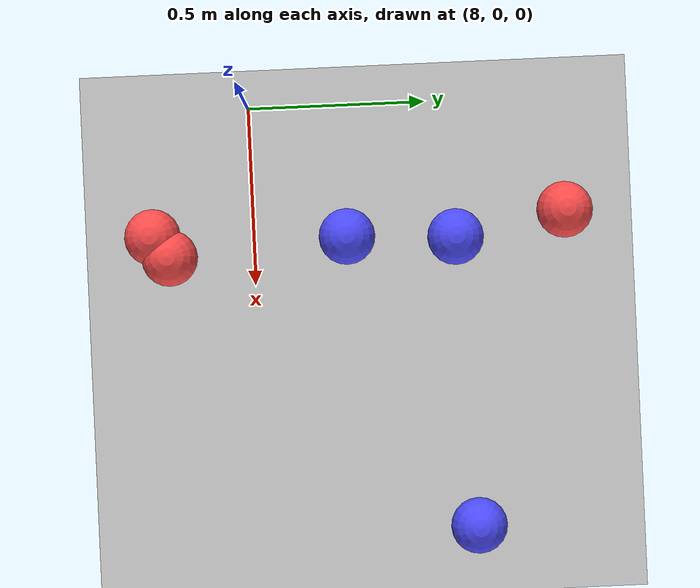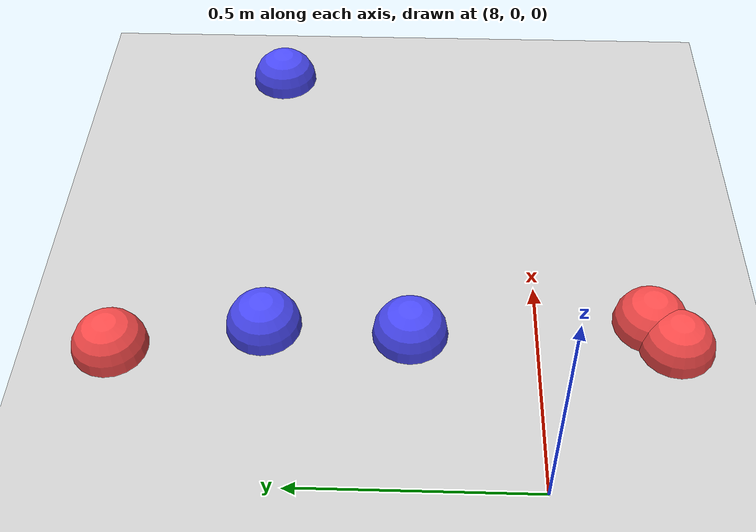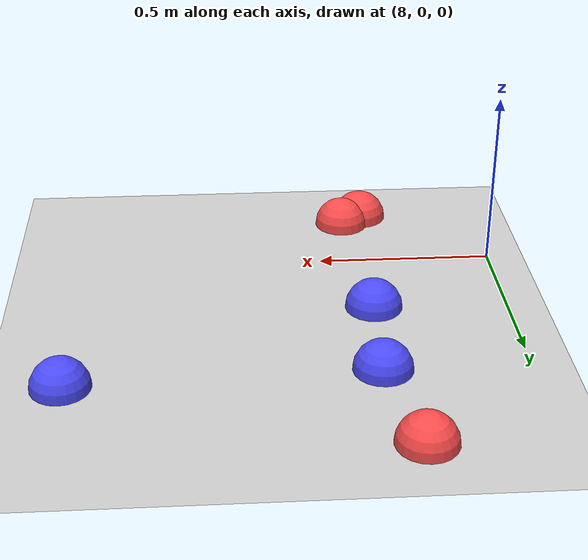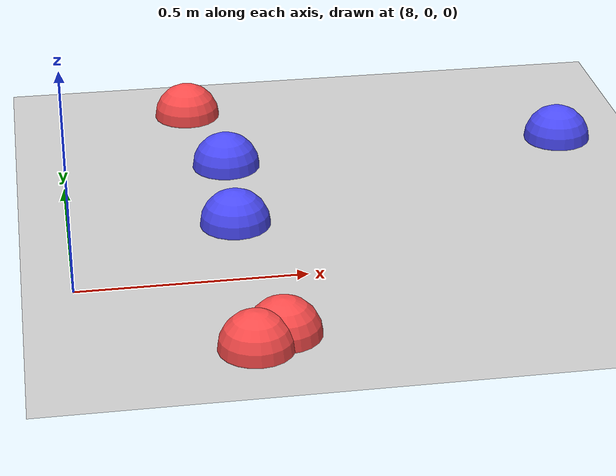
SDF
<sdf version="1.7">
 <world name="default">
  <model name="ground_plane">
   <static>1</static>
   <link name="link">
    <collision name="collision">
     <geometry><plane><normal>0 0 1</normal><size>100 100</size></plane></geometry>
     <surface>
      <contact><collide_bitmask>65535</collide_bitmask></contact>
      <friction><ode><mu>100</mu><mu2>50</mu2></ode></friction>
     </surface>
    </collision>
    <visual name="visual">
     <cast_shadows>0</cast_shadows>
     <geometry><plane><normal>0 0 1</normal><size>100 100</size></plane></geometry>
     <material>
      <script><uri>file://media/materials/scripts/gazebo.material</uri><name>Gazebo/Grey</name></script>
     </material>
    </visual>
   </link>
  </model>
  <model name="seed_blue_207">
   <link name="link">
    <inertial>
     <mass>1</mass>
     <inertia><ixx>0.1</ixx><ixy>0</ixy><ixz>0</ixz><iyy>0.1</iyy><iyz>0</iyz><izz>0.1</izz></inertia>
    </inertial>
    <visual name="visual">
     <geometry><sphere><radius>0.08</radius></sphere></geometry>
     <material>
      <script><name>Gazebo/Grey</name><uri>file://media/materials/scripts/gazebo.material</uri></script>
      <shader type="pixel"><normal_map>__default__</normal_map></shader>
      <ambient>0.3 0.3 1 1</ambient>
      <diffuse>0.7 0.7 0.7 1</diffuse>
      <specular>0.01 0.01 0.01 1</specular>
      <emissive>0 0 0 1</emissive>
     </material>
    </visual>
    <collision name="collision">
     <geometry><sphere><radius>0.0005</radius></sphere></geometry>
     <surface>
      <friction>
       <ode><mu>1</mu><mu2>1</mu2><fdir1>0 0 0</fdir1><slip1>0</slip1><slip2>0</slip2></ode>
       <torsional>
        <coefficient>1</coefficient>
        <patch_radius>0</patch_radius>
        <surface_radius>0</surface_radius>
        <use_patch_radius>1</use_patch_radius>
        <ode><slip>0</slip></ode>
       </torsional>
      </friction>
      <bounce><restitution_coefficient>0</restitution_coefficient><threshold>1e+06</threshold></bounce>
      <contact>
       <collide_without_contact>0</collide_without_contact>
       <collide_without_contact_bitmask>1</collide_without_contact_bitmask>
       <collide_bitmask>1</collide_bitmask>
       <ode>
        <soft_cfm>0</soft_cfm>
        <soft_erp>0.2</soft_erp>
        <kp>1e+13</kp>
        <kd>1</kd>
        <max_vel>0.01</max_vel>
        <min_depth>0</min_depth>
       </ode>
       <bullet>
        <split_impulse>1</split_impulse>
        <split_impulse_penetration_threshold>-0.01</split_impulse_penetration_threshold>
        <soft_cfm>0</soft_cfm>
        <soft_erp>0.2</soft_erp>
        <kp>1e+13</kp>
        <kd>1</kd>
       </bullet>
      </contact>
     </surface>
    </collision>
   </link>
   <static>0</static>
   <pose>9.2082 0.604097 0.0005 0 -0 0</pose>
  </model>
  <model name="seed_blue_208">
   <link name="link">
    <inertial>
     <mass>1</mass>
     <inertia><ixx>0.1</ixx><ixy>0</ixy><ixz>0</ixz><iyy>0.1</iyy><iyz>0</iyz><izz>0.1</izz></inertia>
    </inertial>
    <visual name="visual">
     <geometry><sphere><radius>0.08</radius></sphere></geometry>
     <material>
      <script><name>Gazebo/Grey</name><uri>file://media/materials/scripts/gazebo.material</uri></script>
      <shader type="pixel"><normal_map>__default__</normal_map></shader>
      <ambient>0.3 0.3 1 1</ambient>
      <diffuse>0.7 0.7 0.7 1</diffuse>
      <specular>0.01 0.01 0.01 1</specular>
      <emissive>0 0 0 1</emissive>
     </material>
    </visual>
    <collision name="collision">
     <geometry><sphere><radius>0.0005</radius></sphere></geometry>
     <surface>
      <friction>
       <ode><mu>1</mu><mu2>1</mu2><fdir1>0 0 0</fdir1><slip1>0</slip1><slip2>0</slip2></ode>
       <torsional>
        <coefficient>1</coefficient>
        <patch_radius>0</patch_radius>
        <surface_radius>0</surface_radius>
        <use_patch_radius>1</use_patch_radius>
        <ode><slip>0</slip></ode>
       </torsional>
      </friction>
      <bounce><restitution_coefficient>0</restitution_coefficient><threshold>1e+06</threshold></bounce>
      <contact>
       <collide_without_contact>0</collide_without_contact>
       <collide_without_contact_bitmask>1</collide_without_contact_bitmask>
       <collide_bitmask>1</collide_bitmask>
       <ode>
        <soft_cfm>0</soft_cfm>
        <soft_erp>0.2</soft_erp>
        <kp>1e+13</kp>
        <kd>1</kd>
        <max_vel>0.01</max_vel>
        <min_depth>0</min_depth>
       </ode>
       <bullet>
        <split_impulse>1</split_impulse>
        <split_impulse_penetration_threshold>-0.01</split_impulse_penetration_threshold>
        <soft_cfm>0</soft_cfm>
        <soft_erp>0.2</soft_erp>
        <kp>1e+13</kp>
        <kd>1</kd>
       </bullet>
      </contact>
     </surface>
    </collision>
   </link>
   <static>0</static>
   <pose>8.38692 0.572156 0.0005 0 -0 0</pose>
  </model>
  <model name="seed_blue_212">
   <link name="link">
    <inertial>
     <mass>1</mass>
     <inertia><ixx>0.1</ixx><ixy>0</ixy><ixz>0</ixz><iyy>0.1</iyy><iyz>0</iyz><izz>0.1</izz></inertia>
    </inertial>
    <visual name="visual">
     <geometry><sphere><radius>0.08</radius></sphere></geometry>
     <material>
      <script><name>Gazebo/Grey</name><uri>file://media/materials/scripts/gazebo.material</uri></script>
      <shader type="pixel"><normal_map>__default__</normal_map></shader>
      <ambient>0.3 0.3 1 1</ambient>
      <diffuse>0.7 0.7 0.7 1</diffuse>
      <specular>0.01 0.01 0.01 1</specular>
      <emissive>0 0 0 1</emissive>
     </material>
    </visual>
    <collision name="collision">
     <geometry><sphere><radius>0.0005</radius></sphere></geometry>
     <surface>
      <friction>
       <ode><mu>1</mu><mu2>1</mu2><fdir1>0 0 0</fdir1><slip1>0</slip1><slip2>0</slip2></ode>
       <torsional>
        <coefficient>1</coefficient>
        <patch_radius>0</patch_radius>
        <surface_radius>0</surface_radius>
        <use_patch_radius>1</use_patch_radius>
        <ode><slip>0</slip></ode>
       </torsional>
      </friction>
      <bounce><restitution_coefficient>0</restitution_coefficient><threshold>1e+06</threshold></bounce>
      <contact>
       <collide_without_contact>0</collide_without_contact>
       <collide_without_contact_bitmask>1</collide_without_contact_bitmask>
       <collide_bitmask>1</collide_bitmask>
       <ode>
        <soft_cfm>0</soft_cfm>
        <soft_erp>0.2</soft_erp>
        <kp>1e+13</kp>
        <kd>1</kd>
        <max_vel>0.01</max_vel>
        <min_depth>0</min_depth>
       </ode>
       <bullet>
        <split_impulse>1</split_impulse>
        <split_impulse_penetration_threshold>-0.01</split_impulse_penetration_threshold>
        <soft_cfm>0</soft_cfm>
        <soft_erp>0.2</soft_erp>
        <kp>1e+13</kp>
        <kd>1</kd>
       </bullet>
      </contact>
     </surface>
    </collision>
   </link>
   <static>0</static>
   <pose>8.37311 0.264223 0.0005 0 -0 0</pose>
  </model>
  <model name="seed_red_395">
   <link name="link">
    <inertial>
     <mass>1</mass>
     <inertia><ixx>0.1</ixx><ixy>0</ixy><ixz>0</ixz><iyy>0.1</iyy><iyz>0</iyz><izz>0.1</izz></inertia>
    </inertial>
    <visual name="visual">
     <geometry><sphere><radius>0.08</radius></sphere></geometry>
     <material>
      <script><name>Gazebo/Grey</name><uri>file://media/materials/scripts/gazebo.material</uri></script>
      <shader type="pixel"><normal_map>__default__</normal_map></shader>
      <ambient>1 0.3 0.3 1</ambient>
      <diffuse>0.7 0.7 0.7 1</diffuse>
      <specular>0.01 0.01 0.01 1</specular>
      <emissive>0 0 0 1</emissive>
     </material>
    </visual>
    <collision name="collision">
     <geometry><sphere><radius>0.0005</radius></sphere></geometry>
     <surface>
      <friction>
       <ode><mu>1</mu><mu2>1</mu2><fdir1>0 0 0</fdir1><slip1>0</slip1><slip2>0</slip2></ode>
       <torsional>
        <coefficient>1</coefficient>
        <patch_radius>0</patch_radius>
        <surface_radius>0</surface_radius>
        <use_patch_radius>1</use_patch_radius>
        <ode><slip>0</slip></ode>
       </torsional>
      </friction>
      <bounce><restitution_coefficient>0</restitution_coefficient><threshold>1e+06</threshold></bounce>
      <contact>
       <collide_without_contact>0</collide_without_contact>
       <collide_without_contact_bitmask>1</collide_without_contact_bitmask>
       <collide_bitmask>1</collide_bitmask>
       <ode>
        <soft_cfm>0</soft_cfm>
        <soft_erp>0.2</soft_erp>
        <kp>1e+13</kp>
        <kd>1</kd>
        <max_vel>0.01</max_vel>
        <min_depth>0</min_depth>
       </ode>
       <bullet>
        <split_impulse>1</split_impulse>
        <split_impulse_penetration_threshold>-0.01</split_impulse_penetration_threshold>
        <soft_cfm>0</soft_cfm>
        <soft_erp>0.2</soft_erp>
        <kp>1e+13</kp>
        <kd>1</kd>
       </bullet>
      </contact>
     </surface>
    </collision>
   </link>
   <static>0</static>
   <pose>8.35172 -0.287246 0.0005 0 -0 0</pose>
  </model>
  <model name="seed_red_397">
   <link name="link">
    <inertial>
     <mass>1</mass>
     <inertia><ixx>0.1</ixx><ixy>0</ixy><ixz>0</ixz><iyy>0.1</iyy><iyz>0</iyz><izz>0.1</izz></inertia>
    </inertial>
    <visual name="visual">
     <geometry><sphere><radius>0.08</radius></sphere></geometry>
     <material>
      <script><name>Gazebo/Grey</name><uri>file://media/materials/scripts/gazebo.material</uri></script>
      <shader type="pixel"><normal_map>__default__</normal_map></shader>
      <ambient>1 0.3 0.3 1</ambient>
      <diffuse>0.7 0.7 0.7 1</diffuse>
      <specular>0.01 0.01 0.01 1</specular>
      <emissive>0 0 0 1</emissive>
     </material>
    </visual>
    <collision name="collision">
     <geometry><sphere><radius>0.0005</radius></sphere></geometry>
     <surface>
      <friction>
       <ode><mu>1</mu><mu2>1</mu2><fdir1>0 0 0</fdir1><slip1>0</slip1><slip2>0</slip2></ode>
       <torsional>
        <coefficient>1</coefficient>
        <patch_radius>0</patch_radius>
        <surface_radius>0</surface_radius>
        <use_patch_radius>1</use_patch_radius>
        <ode><slip>0</slip></ode>
       </torsional>
      </friction>
      <bounce><restitution_coefficient>0</restitution_coefficient><threshold>1e+06</threshold></bounce>
      <contact>
       <collide_without_contact>0</collide_without_contact>
       <collide_without_contact_bitmask>1</collide_without_contact_bitmask>
       <collide_bitmask>1</collide_bitmask>
       <ode>
        <soft_cfm>0</soft_cfm>
        <soft_erp>0.2</soft_erp>
        <kp>1e+13</kp>
        <kd>1</kd>
        <max_vel>0.01</max_vel>
        <min_depth>0</min_depth>
       </ode>
       <bullet>
        <split_impulse>1</split_impulse>
        <split_impulse_penetration_threshold>-0.01</split_impulse_penetration_threshold>
        <soft_cfm>0</soft_cfm>
        <soft_erp>0.2</soft_erp>
        <kp>1e+13</kp>
        <kd>1</kd>
       </bullet>
      </contact>
     </surface>
    </collision>
   </link>
   <static>0</static>
   <pose>8.32338 0.884698 0.0005 0 -0 0</pose>
  </model>
  <model name="seed_red_398">
   <link name="link">
    <inertial>
     <mass>1</mass>
     <inertia><ixx>0.1</ixx><ixy>0</ixy><ixz>0</ixz><iyy>0.1</iyy><iyz>0</iyz><izz>0.1</izz></inertia>
    </inertial>
    <visual name="visual">
     <geometry><sphere><radius>0.08</radius></sphere></geometry>
     <material>
      <script><name>Gazebo/Grey</name><uri>file://media/materials/scripts/gazebo.material</uri></script>
      <shader type="pixel"><normal_map>__default__</normal_map></shader>
      <ambient>1 0.3 0.3 1</ambient>
      <diffuse>0.7 0.7 0.7 1</diffuse>
      <specular>0.01 0.01 0.01 1</specular>
      <emissive>0 0 0 1</emissive>
     </material>
    </visual>
    <collision name="collision">
     <geometry><sphere><radius>0.0005</radius></sphere></geometry>
     <surface>
      <friction>
       <ode><mu>1</mu><mu2>1</mu2><fdir1>0 0 0</fdir1><slip1>0</slip1><slip2>0</slip2></ode>
       <torsional>
        <coefficient>1</coefficient>
        <patch_radius>0</patch_radius>
        <surface_radius>0</surface_radius>
        <use_patch_radius>1</use_patch_radius>
        <ode><slip>0</slip></ode>
       </torsional>
      </friction>
      <bounce><restitution_coefficient>0</restitution_coefficient><threshold>1e+06</threshold></bounce>
      <contact>
       <collide_without_contact>0</collide_without_contact>
       <collide_without_contact_bitmask>1</collide_without_contact_bitmask>
       <collide_bitmask>1</collide_bitmask>
       <ode>
        <soft_cfm>0</soft_cfm>
        <soft_erp>0.2</soft_erp>
        <kp>1e+13</kp>
        <kd>1</kd>
        <max_vel>0.01</max_vel>
        <min_depth>0</min_depth>
       </ode>
       <bullet>
        <split_impulse>1</split_impulse>
        <split_impulse_penetration_threshold>-0.01</split_impulse_penetration_threshold>
        <soft_cfm>0</soft_cfm>
        <soft_erp>0.2</soft_erp>
        <kp>1e+13</kp>
        <kd>1</kd>
       </bullet>
      </contact>
     </surface>
    </collision>
   </link>
   <static>0</static>
   <pose>8.41297 -0.241069 0.0005 0 -0 0</pose>
  </model>
 </world>
</sdf>
